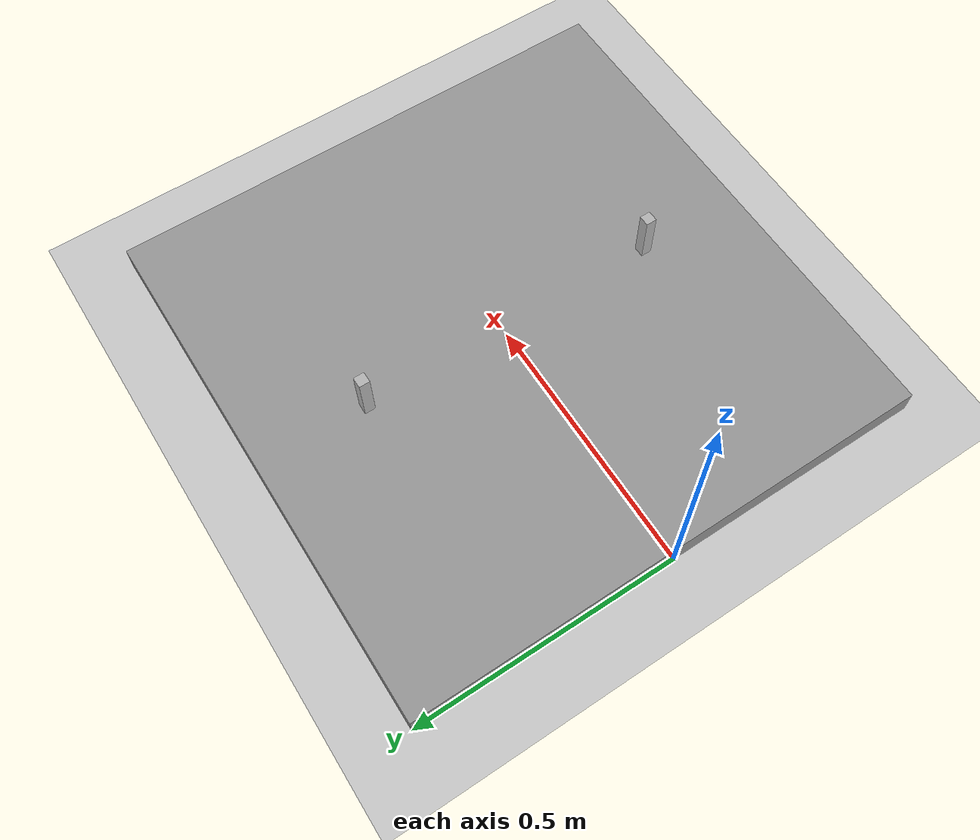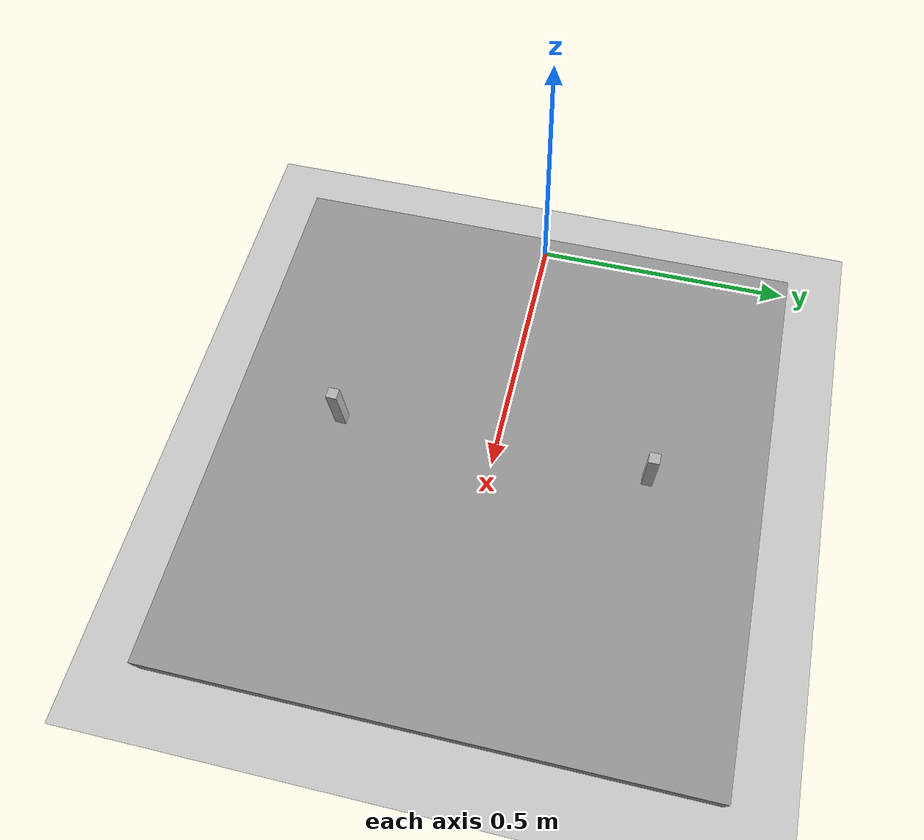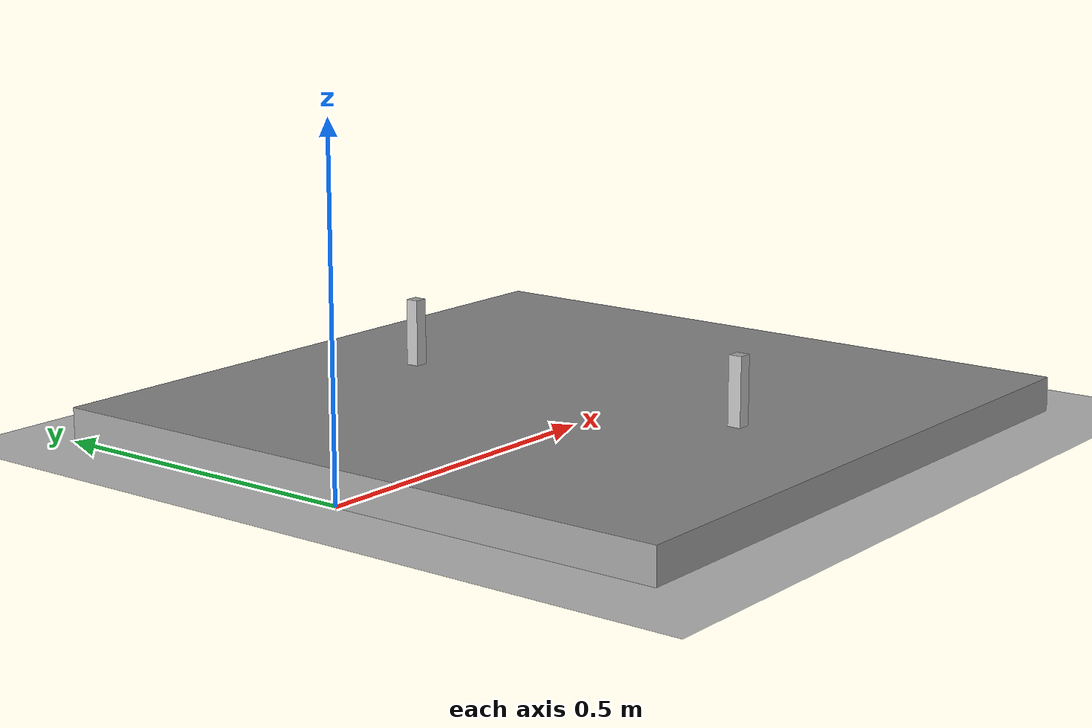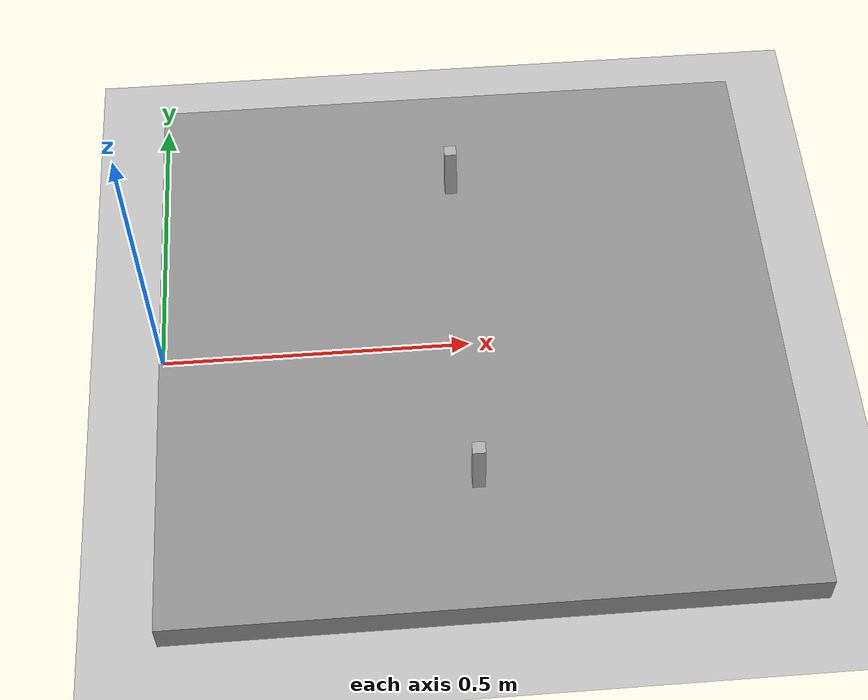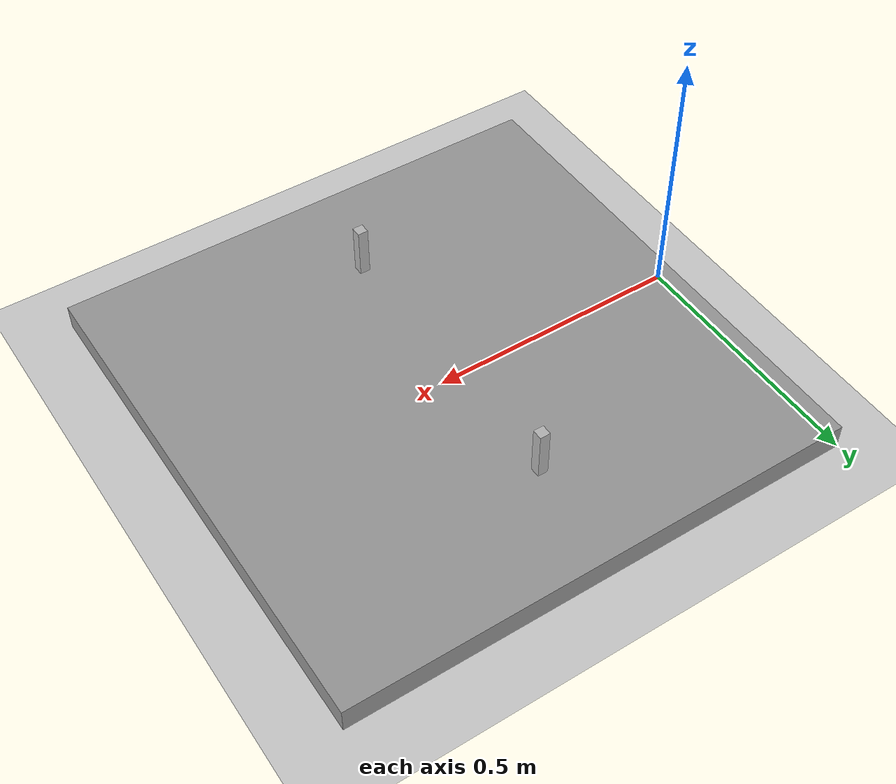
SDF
<?xml version="1.0" ?>
<sdf version="1.4">
  <world name="default">
    <include>
      <uri>model://ground_plane</uri>
    </include>
    <include>
      <uri>model://sun</uri>
    </include>

    <model name='unit_box'>
      <pose frame=''>0.5 0 0 0 -0 0</pose>
      <static>true</static>
      <link name='link'>
        <inertial>
          <mass>1</mass>
          <inertia>
            <ixx>0.166667</ixx>
            <ixy>0</ixy>
            <ixz>0</ixz>
            <iyy>0.166667</iyy>
            <iyz>0</iyz>
            <izz>0.166667</izz>
          </inertia>
        </inertial>
        <collision name='collision'>
          <geometry>
            <box>
              <size>1 1 0.1</size>
            </box>
          </geometry>
          <max_contacts>10</max_contacts>
          <surface>
            <contact>
              <ode/>
            </contact>
            <bounce/>
            <friction>
              <torsional>
                <ode/>
              </torsional>
              <ode/>
            </friction>
          </surface>
        </collision>
        <visual name='visual'>
          <geometry>
            <box>
              <size>1 1 0.1</size>
            </box>
          </geometry>
          <material>
            <script>
              <name>Gazebo/Grey</name>
              <uri>file://media/materials/scripts/gazebo.material</uri>
            </script>
          </material>
        </visual>
        <self_collide>0</self_collide>
        <enable_wind>0</enable_wind>
        <kinematic>0</kinematic>
      </link>
    </model>
  <model name="my_model_l">
    <pose>0.48999 0.288982 0.1 0 0 0</pose>
    <static>false</static>
    <link name="link">
      <inertial>
        <mass>0.1</mass>
        <inertia> <!-- inertias are tricky to compute -->
          <!-- http://gazebosim.org/tutorials?tut=inertia&cat=build_robot -->
          <ixx>0.083</ixx>       <!-- for a box: ixx = 0.083 * mass * (y*y + z*z) -->
          <ixy>0.0</ixy>         <!-- for a box: ixy = 0 -->
          <ixz>0.0</ixz>         <!-- for a box: ixz = 0 -->
          <iyy>0.083</iyy>       <!-- for a box: iyy = 0.083 * mass * (x*x + z*z) -->
          <iyz>0.0</iyz>         <!-- for a box: iyz = 0 -->
          <izz>0.083</izz>       <!-- for a box: izz = 0.083 * mass * (x*x + y*y) -->
        </inertia>
      </inertial>
      <collision name="collision">
        <geometry>
          <box>
            <size>0.02 0.02 0.1</size>
          </box>
	<surface>
		<friction>
         	<ode>
           		<mu>0.1</mu>
           		<mu2>0.1</mu2>
        	</ode>
        	</friction>
	</surface>
        </geometry>
      </collision>
      <visual name="visual">
        <geometry>
          <box>
            <size>0.02 0.02 0.1</size>
          </box>
        </geometry>
      </visual>
    </link>
  </model>
  <model name="my_model_r">
    <pose>0.48999 -0.288982 0.1 0 0 0</pose>
    <static>false</static>
    <link name="link">
      <inertial>
        <mass>0.1</mass>
        <inertia> <!-- inertias are tricky to compute -->
          <!-- http://gazebosim.org/tutorials?tut=inertia&cat=build_robot -->
          <ixx>0.083</ixx>       <!-- for a box: ixx = 0.083 * mass * (y*y + z*z) -->
          <ixy>0.0</ixy>         <!-- for a box: ixy = 0 -->
          <ixz>0.0</ixz>         <!-- for a box: ixz = 0 -->
          <iyy>0.083</iyy>       <!-- for a box: iyy = 0.083 * mass * (x*x + z*z) -->
          <iyz>0.0</iyz>         <!-- for a box: iyz = 0 -->
          <izz>0.083</izz>       <!-- for a box: izz = 0.083 * mass * (x*x + y*y) -->
        </inertia>
      </inertial>
      <collision name="collision">
        <geometry>
          <box>
            <size>0.02 0.02 0.1</size>
          </box>
	<surface>
		<friction>
         	<ode>
           		<mu>0.1</mu>
           		<mu2>0.1</mu2>
        	</ode>
        	</friction>
	</surface>
        </geometry>
      </collision>
      <visual name="visual">
        <geometry>
          <box>
            <size>0.02 0.02 0.1</size>
          </box>
        </geometry>
      </visual>
    </link>
  </model>
  </world>
</sdf>
